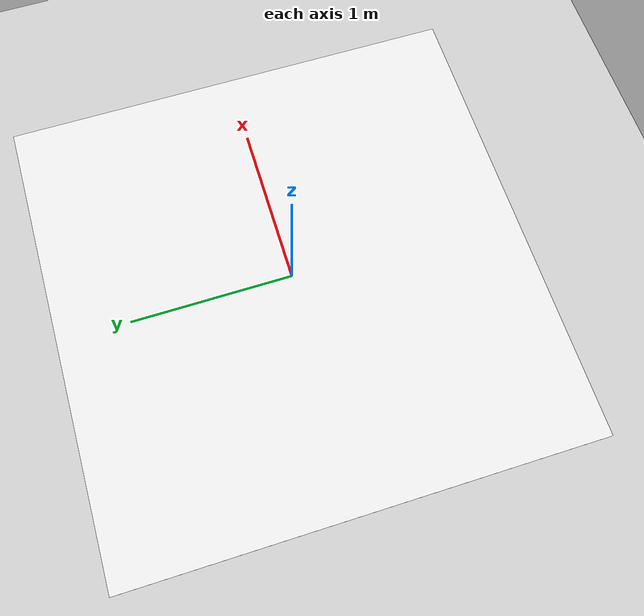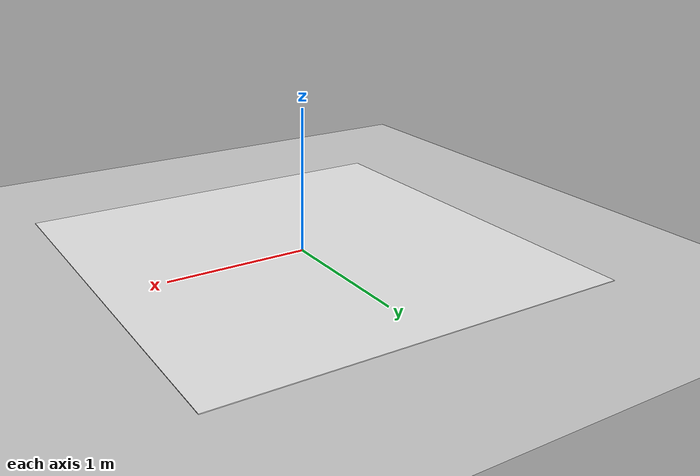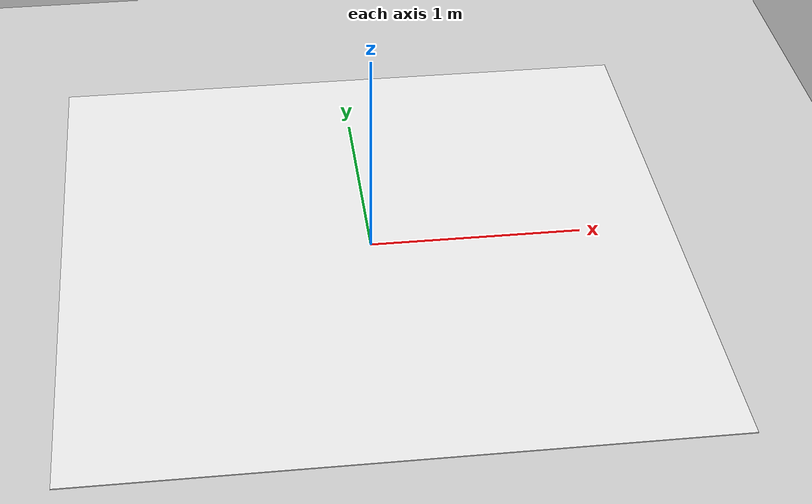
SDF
<sdf version="1.6">
 <world name="default">
  <model name="ground_plane">
   <static>1</static>
   <link name="link">
    <collision name="collision">
     <geometry><plane><normal>0 0 1</normal><size>100 100</size></plane></geometry>
     <surface><friction><ode><mu>100</mu><mu2>50</mu2></ode></friction></surface>
    </collision>
    <visual name="visual">
     <cast_shadows>0</cast_shadows>
     <geometry><plane><normal>0 0 1</normal><size>100 100</size></plane></geometry>
     <material>
      <script><uri>file://media/materials/scripts/gazebo.material</uri><name>Gazebo/Grey</name></script>
     </material>
    </visual>
   </link>
  </model>
  <model name="my_maze">
   <link name="base">
    <inertial>
     <mass>1</mass>
     <inertia>
      <ixx>1.39394</ixx>
      <ixy>0</ixy>
      <ixz>0</ixz>
      <iyy>0.696972</iyy>
      <iyz>0</iyz>
      <izz>0.696973</izz>
     </inertia>
     <pose>0 0 0.05 0 -0 0</pose>
    </inertial>
    <visual name="visual">
     <pose>0 0 0.0025 0 -0 0</pose>
     <geometry><box><size>2.892 2.892 0.005</size></box></geometry>
     <material>
      <script><uri>file://media/materials/scripts/gazebo.material</uri><name>Gazebo/White</name></script>
     </material>
    </visual>
    <collision name="collision">
     <pose>0 0 0.0025 0 -0 0</pose>
     <geometry><box><size>2.892 2.892 0.005</size></box></geometry>
     <surface><friction><ode><mu>1000</mu><mu2>1000</mu2></ode></friction></surface>
    </collision>
   </link>
  </model>
 </world>
</sdf>
